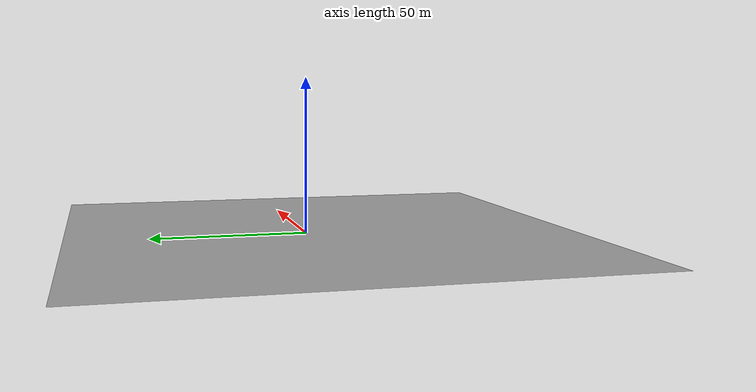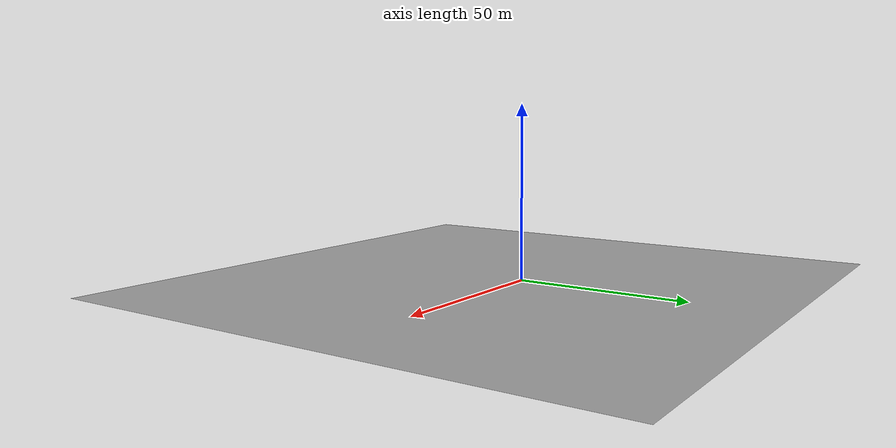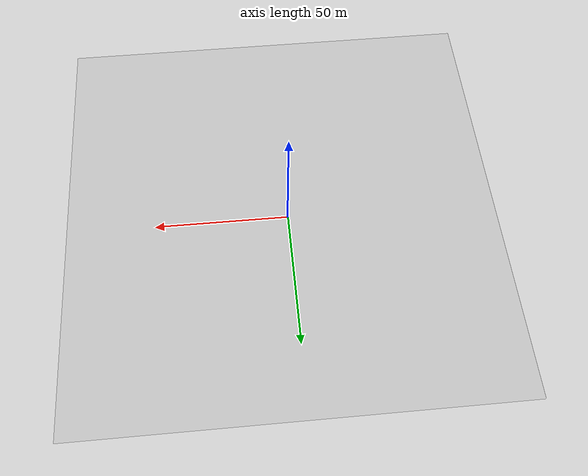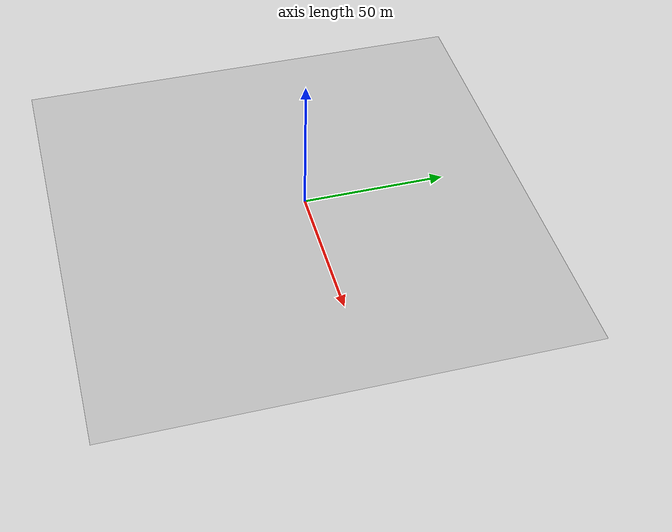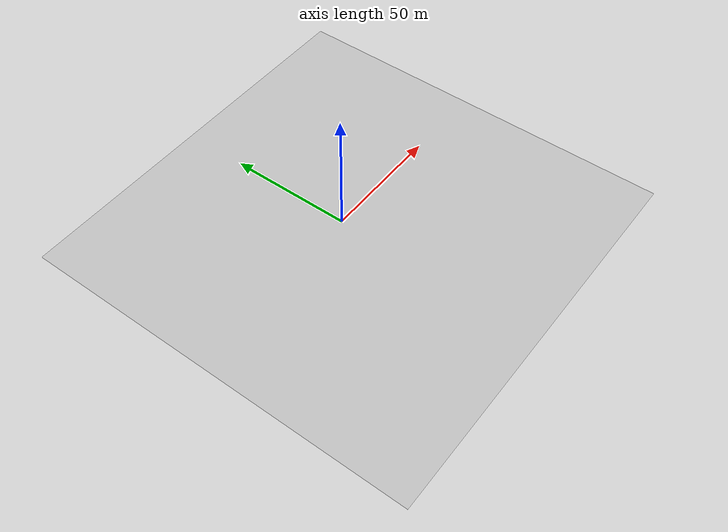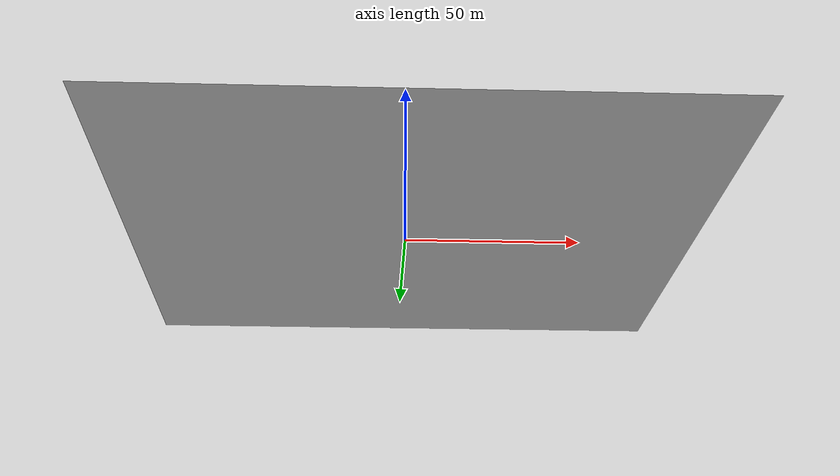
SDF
<?xml version="1.0"?>
<sdf version="1.4">
  <model name="grass_plane">
    <static>true</static>
    <link name="link">
      <collision name="collision">
        <geometry>
          <plane>
            <normal>0 0 1</normal>
            <size>750 750</size>
          </plane>
        </geometry>
        <surface>
          <friction>
            <ode>
              <mu>0.5</mu>
              <mu2>.5</mu2>
            </ode>
          </friction>
        </surface>
      </collision>

      <visual name="visual_0">
        <pose>2 -5 0 0 0 0</pose>

        <cast_shadows>false</cast_shadows>
        <geometry>
          <mesh>
            <uri>model://grass_plane/meshes/grass_plane.dae</uri>
            <scale>3 3 1</scale>
          </mesh>
        </geometry>
      </visual>
    </link>
  </model>
</sdf>
